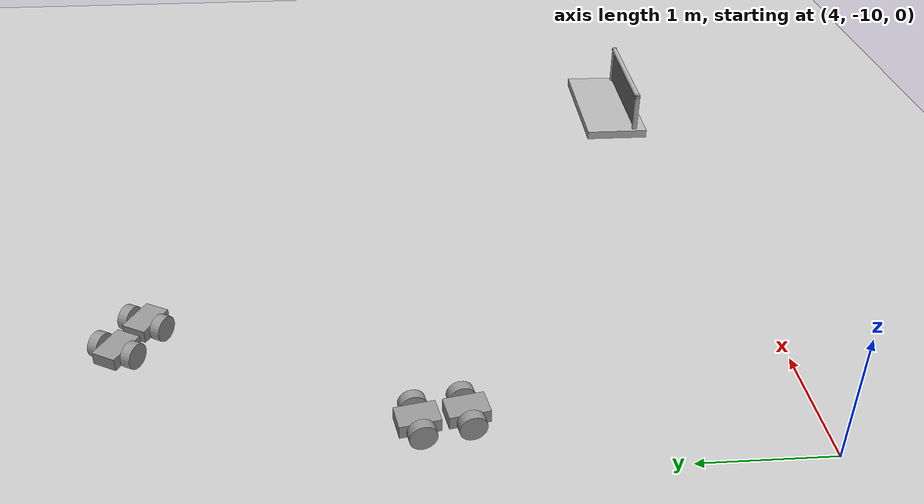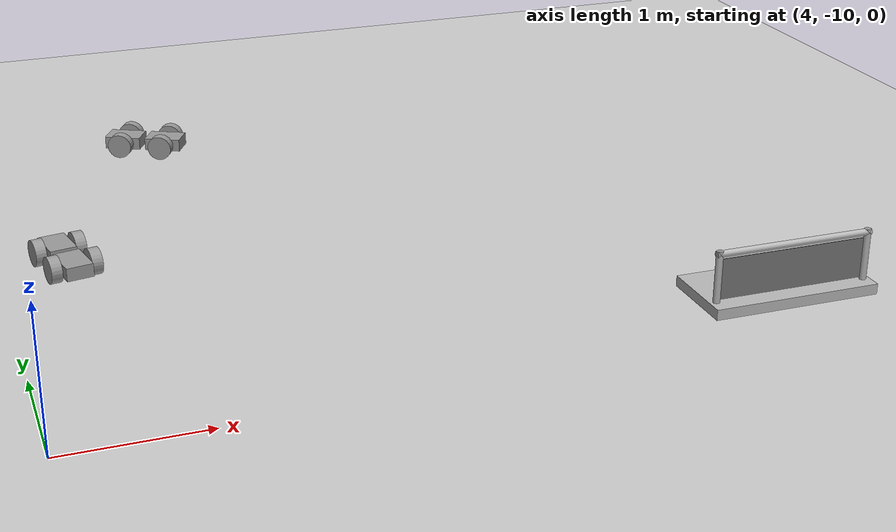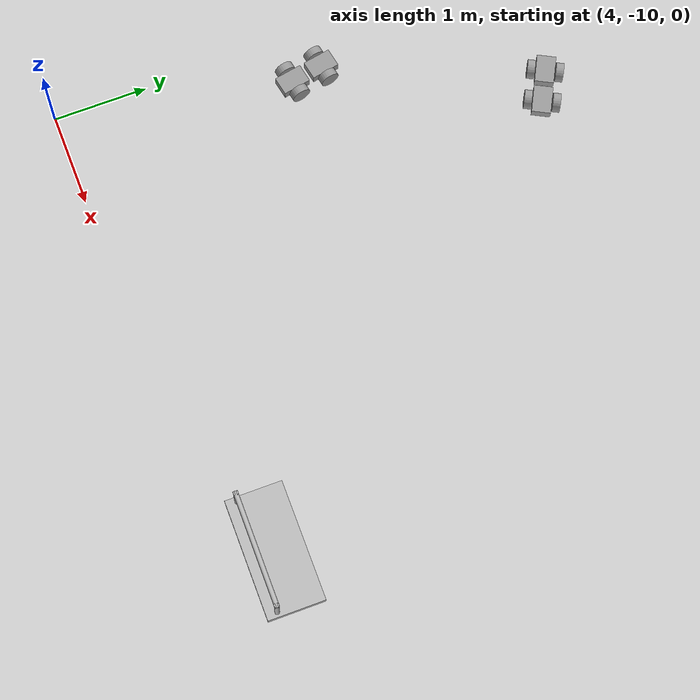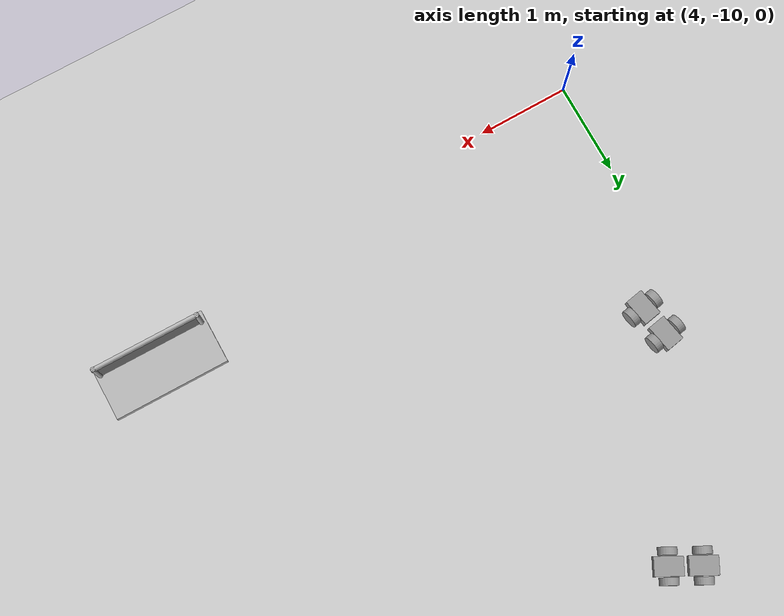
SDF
<sdf version="1.6">
 <world name="default">
  <model name="ground_plane">
   <static>1</static>
   <link name="link">
    <collision name="collision">
     <geometry><plane><normal>0 0 1</normal><size>100 100</size></plane></geometry>
     <surface><friction><ode><mu>100</mu><mu2>50</mu2></ode></friction></surface>
    </collision>
    <visual name="visual">
     <cast_shadows>0</cast_shadows>
     <geometry><plane><normal>0 0 1</normal><size>100 100</size></plane></geometry>
     <material>
      <script><uri>file://media/materials/scripts/gazebo.material</uri><name>Gazebo/Grey</name></script>
     </material>
    </visual>
   </link>
  </model>
  <model name="frc2016_lowbar">
   <link name="base">
    <inertial>
     <mass>50</mass>
     <inertia>
      <ixx>0.035543</ixx>
      <ixy>0</ixy>
      <ixz>0</ixz>
      <iyy>0.134412</iyy>
      <iyz>0</iyz>
      <izz>0.165376</izz>
     </inertia>
    </inertial>
    <visual name="platform">
     <pose>0 0 0.039065 0 -0 0</pose>
     <geometry><box><size>1.26 0.5996 0.07813</size></box></geometry>
    </visual>
    <collision name="platform">
     <pose>0 0 0.039065 0 -0 0</pose>
     <geometry><box><size>1.27 0.6096 0.07813</size></box></geometry>
    </collision>
    <visual name="right_column">
     <pose>-0.57845 -0.18464 0.26863 0 -0 0</pose>
     <geometry><cylinder><radius>0.0254</radius><length>0.381</length></cylinder></geometry>
    </visual>
    <collision name="right_column">
     <pose>-0.57845 -0.18464 0.26863 0 -0 0</pose>
     <geometry><cylinder><radius>0.0254</radius><length>0.381</length></cylinder></geometry>
    </collision>
    <visual name="left_column">
     <pose>0.57845 -0.18464 0.26863 0 -0 0</pose>
     <geometry><cylinder><radius>0.0254</radius><length>0.381</length></cylinder></geometry>
    </visual>
    <collision name="left_column">
     <pose>0.57845 -0.18464 0.26863 0 -0 0</pose>
     <geometry><cylinder><radius>0.0254</radius><length>0.381</length></cylinder></geometry>
    </collision>
    <visual name="horizontal">
     <pose>0 -0.18464 0.43556 0 1.5707 0</pose>
     <geometry><cylinder><radius>0.0254</radius><length>1.2018</length></cylinder></geometry>
    </visual>
    <collision name="horizontal">
     <pose>0 -0.18464 0.43556 0 1.5707 0</pose>
     <geometry><cylinder><radius>0.0254</radius><length>1.2018</length></cylinder></geometry>
    </collision>
   </link>
   <link name="wall">
    <pose>0 -0.1778 0.24323 0 -0 0</pose>
    <inertial>
     <mass>1</mass>
     <inertia>
      <ixx>0.00774528</ixx>
      <ixy>0</ixy>
      <ixz>0</ixz>
      <iyy>0.116613</iyy>
      <iyz>0</iyz>
      <izz>0.108874</izz>
     </inertia>
    </inertial>
    <visual name="visual">
     <geometry><box><size>1.1176 0.00635 0.3</size></box></geometry>
     <material><ambient>0.46 0.46 0.46 1</ambient><diffuse>0.46 0.46 0.46 1</diffuse></material>
    </visual>
    <collision name="collision"><geometry><box><size>1.143 0.00635 0.3</size></box></geometry></collision>
   </link>
   <joint name="bar_joint" type="revolute">
    <pose>0 0 0.36378 0 -0 0</pose>
    <parent>base</parent>
    <child>wall</child>
    <axis>
     <xyz>1 0 0</xyz>
     <limit><lower>-1.5707</lower><upper>1.5707</upper></limit>
     <use_parent_model_frame>0</use_parent_model_frame>
     <dynamics><spring_reference>0</spring_reference><spring_stiffness>0</spring_stiffness></dynamics>
    </axis>
   </joint>
   <pose>9.1262 -9.42422 -0.000101 0 -0.000159 -0.00457</pose>
  </model>
  <model name="ackerDrive">
   <link name="link_0">
    <inertial>
     <mass>1</mass>
     <inertia>
      <ixx>0.166667</ixx>
      <ixy>0</ixy>
      <ixz>0</ixz>
      <iyy>0.166667</iyy>
      <iyz>0</iyz>
      <izz>0.166667</izz>
     </inertia>
    </inertial>
    <self_collide>1</self_collide>
    <visual name="visual">
     <geometry><box><size>0.3 0.2 0.1</size></box></geometry>
     <material>
      <lighting>1</lighting>
      <script><uri>file://media/materials/scripts/gazebo.material</uri><name>Gazebo/Grey</name></script>
      <shader type="vertex"><normal_map>__default__</normal_map></shader>
      <ambient>0.3 0.3 0.3 1</ambient>
      <diffuse>0.7 0.7 0.7 1</diffuse>
      <specular>0.01 0.01 0.01 1</specular>
      <emissive>0 0 0 1</emissive>
     </material>
    </visual>
    <collision name="collision">
     <geometry><box><size>0.3 0.2 0.1</size></box></geometry>
     <surface>
      <friction>
       <ode><mu>1</mu><mu2>1</mu2><fdir1>0 0 0</fdir1><slip1>0</slip1><slip2>0</slip2></ode>
       <torsional>
        <coefficient>1</coefficient>
        <patch_radius>0</patch_radius>
        <surface_radius>0</surface_radius>
        <use_patch_radius>1</use_patch_radius>
        <ode><slip>0</slip></ode>
       </torsional>
      </friction>
      <bounce><restitution_coefficient>0</restitution_coefficient><threshold>1e+06</threshold></bounce>
      <contact>
       <collide_without_contact>0</collide_without_contact>
       <collide_without_contact_bitmask>1</collide_without_contact_bitmask>
       <collide_bitmask>1</collide_bitmask>
       <ode>
        <soft_cfm>0</soft_cfm>
        <soft_erp>0.2</soft_erp>
        <kp>1e+13</kp>
        <kd>1</kd>
        <max_vel>0.01</max_vel>
        <min_depth>0</min_depth>
       </ode>
       <bullet>
        <split_impulse>1</split_impulse>
        <split_impulse_penetration_threshold>-0.01</split_impulse_penetration_threshold>
        <soft_cfm>0</soft_cfm>
        <soft_erp>0.2</soft_erp>
        <kp>1e+13</kp>
        <kd>1</kd>
       </bullet>
      </contact>
     </surface>
    </collision>
   </link>
   <link name="link_0_clone">
    <inertial>
     <mass>1</mass>
     <inertia>
      <ixx>0.166667</ixx>
      <ixy>0</ixy>
      <ixz>0</ixz>
      <iyy>0.166667</iyy>
      <iyz>0</iyz>
      <izz>0.166667</izz>
     </inertia>
    </inertial>
    <pose>0.35 0 0 0 -0 0</pose>
    <self_collide>1</self_collide>
    <visual name="visual">
     <geometry><box><size>0.3 0.2 0.1</size></box></geometry>
     <material>
      <lighting>1</lighting>
      <script><uri>file://media/materials/scripts/gazebo.material</uri><name>Gazebo/Grey</name></script>
      <shader type="vertex"><normal_map>__default__</normal_map></shader>
      <ambient>0.3 0.3 0.3 1</ambient>
      <diffuse>0.7 0.7 0.7 1</diffuse>
      <specular>0.01 0.01 0.01 1</specular>
      <emissive>0 0 0 1</emissive>
     </material>
    </visual>
    <collision name="collision">
     <geometry><box><size>0.3 0.2 0.1</size></box></geometry>
     <surface>
      <friction>
       <ode><mu>1</mu><mu2>1</mu2><fdir1>0 0 0</fdir1><slip1>0</slip1><slip2>0</slip2></ode>
       <torsional>
        <coefficient>1</coefficient>
        <patch_radius>0</patch_radius>
        <surface_radius>0</surface_radius>
        <use_patch_radius>1</use_patch_radius>
        <ode><slip>0</slip></ode>
       </torsional>
      </friction>
      <bounce><restitution_coefficient>0</restitution_coefficient><threshold>1e+06</threshold></bounce>
      <contact>
       <collide_without_contact>0</collide_without_contact>
       <collide_without_contact_bitmask>1</collide_without_contact_bitmask>
       <collide_bitmask>1</collide_bitmask>
       <ode>
        <soft_cfm>0</soft_cfm>
        <soft_erp>0.2</soft_erp>
        <kp>1e+13</kp>
        <kd>1</kd>
        <max_vel>0.01</max_vel>
        <min_depth>0</min_depth>
       </ode>
       <bullet>
        <split_impulse>1</split_impulse>
        <split_impulse_penetration_threshold>-0.01</split_impulse_penetration_threshold>
        <soft_cfm>0</soft_cfm>
        <soft_erp>0.2</soft_erp>
        <kp>1e+13</kp>
        <kd>1</kd>
       </bullet>
      </contact>
     </surface>
    </collision>
   </link>
   <link name="link_1">
    <inertial>
     <mass>1</mass>
     <inertia><ixx>0.145833</ixx><ixy>0</ixy><ixz>0</ixz><iyy>0.145833</iyy><iyz>0</iyz><izz>0.125</izz></inertia>
    </inertial>
    <pose>-0 -0.15 -0 1.57 -0 0</pose>
    <self_collide>1</self_collide>
    <visual name="visual">
     <geometry><cylinder><radius>0.1</radius><length>0.08</length></cylinder></geometry>
     <material>
      <lighting>1</lighting>
      <script><uri>file://media/materials/scripts/gazebo.material</uri><name>Gazebo/Grey</name></script>
      <shader type="vertex"><normal_map>__default__</normal_map></shader>
      <ambient>0.3 0.3 0.3 1</ambient>
      <diffuse>0.7 0.7 0.7 1</diffuse>
      <specular>0.01 0.01 0.01 1</specular>
      <emissive>0 0 0 1</emissive>
     </material>
    </visual>
    <collision name="collision">
     <geometry><cylinder><radius>0.1</radius><length>0.08</length></cylinder></geometry>
     <surface>
      <friction>
       <ode><mu>1</mu><mu2>1</mu2><fdir1>0 0 0</fdir1><slip1>0</slip1><slip2>0</slip2></ode>
       <torsional>
        <coefficient>1</coefficient>
        <patch_radius>0</patch_radius>
        <surface_radius>0</surface_radius>
        <use_patch_radius>1</use_patch_radius>
        <ode><slip>0</slip></ode>
       </torsional>
      </friction>
      <bounce><restitution_coefficient>0</restitution_coefficient><threshold>1e+06</threshold></bounce>
      <contact>
       <collide_without_contact>0</collide_without_contact>
       <collide_without_contact_bitmask>1</collide_without_contact_bitmask>
       <collide_bitmask>1</collide_bitmask>
       <ode>
        <soft_cfm>0</soft_cfm>
        <soft_erp>0.2</soft_erp>
        <kp>1e+13</kp>
        <kd>1</kd>
        <max_vel>0.01</max_vel>
        <min_depth>0</min_depth>
       </ode>
       <bullet>
        <split_impulse>1</split_impulse>
        <split_impulse_penetration_threshold>-0.01</split_impulse_penetration_threshold>
        <soft_cfm>0</soft_cfm>
        <soft_erp>0.2</soft_erp>
        <kp>1e+13</kp>
        <kd>1</kd>
       </bullet>
      </contact>
     </surface>
    </collision>
   </link>
   <link name="link_1_clone">
    <inertial>
     <mass>1</mass>
     <inertia><ixx>0.145833</ixx><ixy>0</ixy><ixz>0</ixz><iyy>0.145833</iyy><iyz>0</iyz><izz>0.125</izz></inertia>
    </inertial>
    <pose>0 0.15 0 1.57 -0 0</pose>
    <self_collide>1</self_collide>
    <visual name="visual">
     <geometry><cylinder><radius>0.1</radius><length>0.08</length></cylinder></geometry>
     <material>
      <lighting>1</lighting>
      <script><uri>file://media/materials/scripts/gazebo.material</uri><name>Gazebo/Grey</name></script>
      <shader type="vertex"><normal_map>__default__</normal_map></shader>
      <ambient>0.3 0.3 0.3 1</ambient>
      <diffuse>0.7 0.7 0.7 1</diffuse>
      <specular>0.01 0.01 0.01 1</specular>
      <emissive>0 0 0 1</emissive>
     </material>
    </visual>
    <collision name="collision">
     <geometry><cylinder><radius>0.1</radius><length>0.08</length></cylinder></geometry>
     <surface>
      <friction>
       <ode><mu>0.98</mu><mu2>1</mu2><fdir1>0 0 0</fdir1><slip1>0</slip1><slip2>0</slip2></ode>
       <torsional>
        <coefficient>1</coefficient>
        <patch_radius>0</patch_radius>
        <surface_radius>0</surface_radius>
        <use_patch_radius>1</use_patch_radius>
        <ode><slip>0</slip></ode>
       </torsional>
      </friction>
      <bounce><restitution_coefficient>0</restitution_coefficient><threshold>1e+06</threshold></bounce>
      <contact>
       <collide_without_contact>0</collide_without_contact>
       <collide_without_contact_bitmask>1</collide_without_contact_bitmask>
       <collide_bitmask>1</collide_bitmask>
       <ode>
        <soft_cfm>0</soft_cfm>
        <soft_erp>0.2</soft_erp>
        <kp>1e+13</kp>
        <kd>1</kd>
        <max_vel>0.01</max_vel>
        <min_depth>0</min_depth>
       </ode>
       <bullet>
        <split_impulse>1</split_impulse>
        <split_impulse_penetration_threshold>-0.01</split_impulse_penetration_threshold>
        <soft_cfm>0</soft_cfm>
        <soft_erp>0.2</soft_erp>
        <kp>1e+13</kp>
        <kd>1</kd>
       </bullet>
      </contact>
     </surface>
    </collision>
   </link>
   <link name="link_1_clone_0">
    <inertial>
     <mass>1</mass>
     <inertia><ixx>0.145833</ixx><ixy>0</ixy><ixz>0</ixz><iyy>0.145833</iyy><iyz>0</iyz><izz>0.125</izz></inertia>
    </inertial>
    <pose>0.35 -0.15 -0 1.57 -0 0</pose>
    <self_collide>1</self_collide>
    <visual name="visual">
     <geometry><cylinder><radius>0.1</radius><length>0.08</length></cylinder></geometry>
     <material>
      <lighting>1</lighting>
      <script><uri>file://media/materials/scripts/gazebo.material</uri><name>Gazebo/Grey</name></script>
      <shader type="vertex"><normal_map>__default__</normal_map></shader>
      <ambient>0.3 0.3 0.3 1</ambient>
      <diffuse>0.7 0.7 0.7 1</diffuse>
      <specular>0.01 0.01 0.01 1</specular>
      <emissive>0 0 0 1</emissive>
     </material>
    </visual>
    <collision name="collision">
     <geometry><cylinder><radius>0.1</radius><length>0.08</length></cylinder></geometry>
     <surface>
      <friction>
       <ode><mu>1</mu><mu2>1</mu2><fdir1>0 0 0</fdir1><slip1>0</slip1><slip2>0</slip2></ode>
       <torsional>
        <coefficient>1</coefficient>
        <patch_radius>0</patch_radius>
        <surface_radius>0</surface_radius>
        <use_patch_radius>1</use_patch_radius>
        <ode><slip>0</slip></ode>
       </torsional>
      </friction>
      <bounce><restitution_coefficient>0</restitution_coefficient><threshold>1e+06</threshold></bounce>
      <contact>
       <collide_without_contact>0</collide_without_contact>
       <collide_without_contact_bitmask>1</collide_without_contact_bitmask>
       <collide_bitmask>1</collide_bitmask>
       <ode>
        <soft_cfm>0</soft_cfm>
        <soft_erp>0.2</soft_erp>
        <kp>1e+13</kp>
        <kd>1</kd>
        <max_vel>0.01</max_vel>
        <min_depth>0</min_depth>
       </ode>
       <bullet>
        <split_impulse>1</split_impulse>
        <split_impulse_penetration_threshold>-0.01</split_impulse_penetration_threshold>
        <soft_cfm>0</soft_cfm>
        <soft_erp>0.2</soft_erp>
        <kp>1e+13</kp>
        <kd>1</kd>
       </bullet>
      </contact>
     </surface>
    </collision>
   </link>
   <link name="link_1_clone_clone">
    <inertial>
     <mass>1</mass>
     <inertia><ixx>0.145833</ixx><ixy>0</ixy><ixz>0</ixz><iyy>0.145833</iyy><iyz>0</iyz><izz>0.125</izz></inertia>
    </inertial>
    <pose>0.35 0.15 -0 1.57 -0 0</pose>
    <self_collide>1</self_collide>
    <visual name="visual">
     <geometry><cylinder><radius>0.1</radius><length>0.08</length></cylinder></geometry>
     <material>
      <lighting>1</lighting>
      <script><uri>file://media/materials/scripts/gazebo.material</uri><name>Gazebo/Grey</name></script>
      <shader type="vertex"><normal_map>__default__</normal_map></shader>
      <ambient>0.3 0.3 0.3 1</ambient>
      <diffuse>0.7 0.7 0.7 1</diffuse>
      <specular>0.01 0.01 0.01 1</specular>
      <emissive>0 0 0 1</emissive>
     </material>
    </visual>
    <collision name="collision">
     <geometry><cylinder><radius>0.1</radius><length>0.08</length></cylinder></geometry>
     <surface>
      <friction>
       <ode><mu>1</mu><mu2>1</mu2><fdir1>0 0 0</fdir1><slip1>0</slip1><slip2>0</slip2></ode>
       <torsional>
        <coefficient>1</coefficient>
        <patch_radius>0</patch_radius>
        <surface_radius>0</surface_radius>
        <use_patch_radius>1</use_patch_radius>
        <ode><slip>0</slip></ode>
       </torsional>
      </friction>
      <bounce><restitution_coefficient>0</restitution_coefficient><threshold>1e+06</threshold></bounce>
      <contact>
       <collide_without_contact>0</collide_without_contact>
       <collide_without_contact_bitmask>1</collide_without_contact_bitmask>
       <collide_bitmask>1</collide_bitmask>
       <ode>
        <soft_cfm>0</soft_cfm>
        <soft_erp>0.2</soft_erp>
        <kp>1e+13</kp>
        <kd>1</kd>
        <max_vel>0.01</max_vel>
        <min_depth>0</min_depth>
       </ode>
       <bullet>
        <split_impulse>1</split_impulse>
        <split_impulse_penetration_threshold>-0.01</split_impulse_penetration_threshold>
        <soft_cfm>0</soft_cfm>
        <soft_erp>0.2</soft_erp>
        <kp>1e+13</kp>
        <kd>1</kd>
       </bullet>
      </contact>
     </surface>
    </collision>
   </link>
   <joint name="link_0_JOINT_2" type="revolute">
    <parent>link_0</parent>
    <child>link_1_clone</child>
    <axis>
     <xyz>0 0 1</xyz>
     <use_parent_model_frame>0</use_parent_model_frame>
     <limit>
      <lower>-1.79769e+308</lower>
      <upper>1.79769e+308</upper>
      <effort>-1</effort>
      <velocity>-1</velocity>
     </limit>
     <dynamics>
      <spring_reference>0</spring_reference>
      <spring_stiffness>0</spring_stiffness>
      <damping>0</damping>
      <friction>0</friction>
     </dynamics>
    </axis>
    <physics>
     <ode><limit><cfm>0</cfm><erp>0.2</erp></limit><suspension><cfm>0</cfm><erp>0.2</erp></suspension></ode>
    </physics>
   </joint>
   <joint name="link_0_JOINT_3" type="revolute">
    <parent>link_0</parent>
    <child>link_1</child>
    <axis>
     <xyz>0 0 1</xyz>
     <use_parent_model_frame>0</use_parent_model_frame>
     <limit>
      <lower>-1.79769e+308</lower>
      <upper>1.79769e+308</upper>
      <effort>-1</effort>
      <velocity>-1</velocity>
     </limit>
     <dynamics>
      <spring_reference>0</spring_reference>
      <spring_stiffness>0</spring_stiffness>
      <damping>0</damping>
      <friction>0</friction>
     </dynamics>
    </axis>
    <physics>
     <ode><limit><cfm>0</cfm><erp>0.2</erp></limit><suspension><cfm>0</cfm><erp>0.2</erp></suspension></ode>
    </physics>
   </joint>
   <joint name="link_0_clone_JOINT_4" type="revolute">
    <parent>link_0_clone</parent>
    <child>link_1_clone_0</child>
    <axis>
     <xyz>0 0 1</xyz>
     <use_parent_model_frame>0</use_parent_model_frame>
     <limit>
      <lower>-1.79769e+308</lower>
      <upper>1.79769e+308</upper>
      <effort>-1</effort>
      <velocity>-1</velocity>
     </limit>
     <dynamics>
      <spring_reference>0</spring_reference>
      <spring_stiffness>0</spring_stiffness>
      <damping>0</damping>
      <friction>0</friction>
     </dynamics>
    </axis>
    <physics>
     <ode><limit><cfm>0</cfm><erp>0.2</erp></limit><suspension><cfm>0</cfm><erp>0.2</erp></suspension></ode>
    </physics>
   </joint>
   <joint name="link_0_clone_JOINT_5" type="revolute">
    <parent>link_0_clone</parent>
    <child>link_1_clone_clone</child>
    <axis>
     <xyz>0 0 1</xyz>
     <use_parent_model_frame>0</use_parent_model_frame>
     <limit>
      <lower>-1.79769e+308</lower>
      <upper>1.79769e+308</upper>
      <effort>-1</effort>
      <velocity>-1</velocity>
     </limit>
     <dynamics>
      <spring_reference>0</spring_reference>
      <spring_stiffness>0</spring_stiffness>
      <damping>0</damping>
      <friction>0</friction>
     </dynamics>
    </axis>
    <physics>
     <ode><limit><cfm>0</cfm><erp>0.2</erp></limit><suspension><cfm>0</cfm><erp>0.2</erp></suspension></ode>
    </physics>
   </joint>
   <joint name="link_0_clone_JOINT_6" type="revolute">
    <parent>link_0_clone</parent>
    <child>link_0</child>
    <pose>0.18 0 0 0 -0 0</pose>
    <axis>
     <xyz>0 0 1</xyz>
     <use_parent_model_frame>0</use_parent_model_frame>
     <limit><lower>-1e+16</lower><upper>1e+16</upper><effort>-1</effort><velocity>-1</velocity></limit>
     <dynamics>
      <spring_reference>0</spring_reference>
      <spring_stiffness>0</spring_stiffness>
      <damping>0</damping>
      <friction>0</friction>
     </dynamics>
    </axis>
    <physics>
     <ode><limit><cfm>0</cfm><erp>0.2</erp></limit><suspension><cfm>0</cfm><erp>0.2</erp></suspension></ode>
    </physics>
   </joint>
   <static>0</static>
   <allow_auto_disable>0</allow_auto_disable>
   <pose>5.32291 -4.99717 0.100031 7e-06 -6e-06 -0.482101</pose>
  </model>
  <model name="ackerDrive_0">
   <link name="link_0">
    <inertial>
     <mass>1</mass>
     <inertia>
      <ixx>0.166667</ixx>
      <ixy>0</ixy>
      <ixz>0</ixz>
      <iyy>0.166667</iyy>
      <iyz>0</iyz>
      <izz>0.166667</izz>
     </inertia>
    </inertial>
    <self_collide>1</self_collide>
    <visual name="visual">
     <geometry><box><size>0.3 0.2 0.1</size></box></geometry>
     <material>
      <lighting>1</lighting>
      <script><uri>file://media/materials/scripts/gazebo.material</uri><name>Gazebo/Grey</name></script>
      <shader type="vertex"><normal_map>__default__</normal_map></shader>
      <ambient>0.3 0.3 0.3 1</ambient>
      <diffuse>0.7 0.7 0.7 1</diffuse>
      <specular>0.01 0.01 0.01 1</specular>
      <emissive>0 0 0 1</emissive>
     </material>
    </visual>
    <collision name="collision">
     <geometry><box><size>0.3 0.2 0.1</size></box></geometry>
     <surface>
      <friction>
       <ode><mu>1</mu><mu2>1</mu2><fdir1>0 0 0</fdir1><slip1>0</slip1><slip2>0</slip2></ode>
       <torsional>
        <coefficient>1</coefficient>
        <patch_radius>0</patch_radius>
        <surface_radius>0</surface_radius>
        <use_patch_radius>1</use_patch_radius>
        <ode><slip>0</slip></ode>
       </torsional>
      </friction>
      <bounce><restitution_coefficient>0</restitution_coefficient><threshold>1e+06</threshold></bounce>
      <contact>
       <collide_without_contact>0</collide_without_contact>
       <collide_without_contact_bitmask>1</collide_without_contact_bitmask>
       <collide_bitmask>1</collide_bitmask>
       <ode>
        <soft_cfm>0</soft_cfm>
        <soft_erp>0.2</soft_erp>
        <kp>1e+13</kp>
        <kd>1</kd>
        <max_vel>0.01</max_vel>
        <min_depth>0</min_depth>
       </ode>
       <bullet>
        <split_impulse>1</split_impulse>
        <split_impulse_penetration_threshold>-0.01</split_impulse_penetration_threshold>
        <soft_cfm>0</soft_cfm>
        <soft_erp>0.2</soft_erp>
        <kp>1e+13</kp>
        <kd>1</kd>
       </bullet>
      </contact>
     </surface>
    </collision>
   </link>
   <link name="link_0_clone">
    <inertial>
     <mass>1</mass>
     <inertia>
      <ixx>0.166667</ixx>
      <ixy>0</ixy>
      <ixz>0</ixz>
      <iyy>0.166667</iyy>
      <iyz>0</iyz>
      <izz>0.166667</izz>
     </inertia>
    </inertial>
    <pose>0.35 0 0 0 -0 0</pose>
    <self_collide>1</self_collide>
    <visual name="visual">
     <geometry><box><size>0.3 0.2 0.1</size></box></geometry>
     <material>
      <lighting>1</lighting>
      <script><uri>file://media/materials/scripts/gazebo.material</uri><name>Gazebo/Grey</name></script>
      <shader type="vertex"><normal_map>__default__</normal_map></shader>
      <ambient>0.3 0.3 0.3 1</ambient>
      <diffuse>0.7 0.7 0.7 1</diffuse>
      <specular>0.01 0.01 0.01 1</specular>
      <emissive>0 0 0 1</emissive>
     </material>
    </visual>
    <collision name="collision">
     <geometry><box><size>0.3 0.2 0.1</size></box></geometry>
     <surface>
      <friction>
       <ode><mu>1</mu><mu2>1</mu2><fdir1>0 0 0</fdir1><slip1>0</slip1><slip2>0</slip2></ode>
       <torsional>
        <coefficient>1</coefficient>
        <patch_radius>0</patch_radius>
        <surface_radius>0</surface_radius>
        <use_patch_radius>1</use_patch_radius>
        <ode><slip>0</slip></ode>
       </torsional>
      </friction>
      <bounce><restitution_coefficient>0</restitution_coefficient><threshold>1e+06</threshold></bounce>
      <contact>
       <collide_without_contact>0</collide_without_contact>
       <collide_without_contact_bitmask>1</collide_without_contact_bitmask>
       <collide_bitmask>1</collide_bitmask>
       <ode>
        <soft_cfm>0</soft_cfm>
        <soft_erp>0.2</soft_erp>
        <kp>1e+13</kp>
        <kd>1</kd>
        <max_vel>0.01</max_vel>
        <min_depth>0</min_depth>
       </ode>
       <bullet>
        <split_impulse>1</split_impulse>
        <split_impulse_penetration_threshold>-0.01</split_impulse_penetration_threshold>
        <soft_cfm>0</soft_cfm>
        <soft_erp>0.2</soft_erp>
        <kp>1e+13</kp>
        <kd>1</kd>
       </bullet>
      </contact>
     </surface>
    </collision>
   </link>
   <link name="link_1">
    <inertial>
     <mass>1</mass>
     <inertia><ixx>0.145833</ixx><ixy>0</ixy><ixz>0</ixz><iyy>0.145833</iyy><iyz>0</iyz><izz>0.125</izz></inertia>
    </inertial>
    <pose>-0 -0.15 -0 1.57 -0 0</pose>
    <self_collide>1</self_collide>
    <visual name="visual">
     <geometry><cylinder><radius>0.1</radius><length>0.08</length></cylinder></geometry>
     <material>
      <lighting>1</lighting>
      <script><uri>file://media/materials/scripts/gazebo.material</uri><name>Gazebo/Grey</name></script>
      <shader type="vertex"><normal_map>__default__</normal_map></shader>
      <ambient>0.3 0.3 0.3 1</ambient>
      <diffuse>0.7 0.7 0.7 1</diffuse>
      <specular>0.01 0.01 0.01 1</specular>
      <emissive>0 0 0 1</emissive>
     </material>
    </visual>
    <collision name="collision">
     <geometry><cylinder><radius>0.1</radius><length>0.08</length></cylinder></geometry>
     <surface>
      <friction>
       <ode><mu>1</mu><mu2>1</mu2><fdir1>0 0 0</fdir1><slip1>0</slip1><slip2>0</slip2></ode>
       <torsional>
        <coefficient>1</coefficient>
        <patch_radius>0</patch_radius>
        <surface_radius>0</surface_radius>
        <use_patch_radius>1</use_patch_radius>
        <ode><slip>0</slip></ode>
       </torsional>
      </friction>
      <bounce><restitution_coefficient>0</restitution_coefficient><threshold>1e+06</threshold></bounce>
      <contact>
       <collide_without_contact>0</collide_without_contact>
       <collide_without_contact_bitmask>1</collide_without_contact_bitmask>
       <collide_bitmask>1</collide_bitmask>
       <ode>
        <soft_cfm>0</soft_cfm>
        <soft_erp>0.2</soft_erp>
        <kp>1e+13</kp>
        <kd>1</kd>
        <max_vel>0.01</max_vel>
        <min_depth>0</min_depth>
       </ode>
       <bullet>
        <split_impulse>1</split_impulse>
        <split_impulse_penetration_threshold>-0.01</split_impulse_penetration_threshold>
        <soft_cfm>0</soft_cfm>
        <soft_erp>0.2</soft_erp>
        <kp>1e+13</kp>
        <kd>1</kd>
       </bullet>
      </contact>
     </surface>
    </collision>
   </link>
   <link name="link_1_clone">
    <inertial>
     <mass>1</mass>
     <inertia><ixx>0.145833</ixx><ixy>0</ixy><ixz>0</ixz><iyy>0.145833</iyy><iyz>0</iyz><izz>0.125</izz></inertia>
    </inertial>
    <pose>0 0.15 0 1.57 -0 0</pose>
    <self_collide>1</self_collide>
    <visual name="visual">
     <geometry><cylinder><radius>0.1</radius><length>0.08</length></cylinder></geometry>
     <material>
      <lighting>1</lighting>
      <script><uri>file://media/materials/scripts/gazebo.material</uri><name>Gazebo/Grey</name></script>
      <shader type="vertex"><normal_map>__default__</normal_map></shader>
      <ambient>0.3 0.3 0.3 1</ambient>
      <diffuse>0.7 0.7 0.7 1</diffuse>
      <specular>0.01 0.01 0.01 1</specular>
      <emissive>0 0 0 1</emissive>
     </material>
    </visual>
    <collision name="collision">
     <geometry><cylinder><radius>0.1</radius><length>0.08</length></cylinder></geometry>
     <surface>
      <friction>
       <ode><mu>0.98</mu><mu2>1</mu2><fdir1>0 0 0</fdir1><slip1>0</slip1><slip2>0</slip2></ode>
       <torsional>
        <coefficient>1</coefficient>
        <patch_radius>0</patch_radius>
        <surface_radius>0</surface_radius>
        <use_patch_radius>1</use_patch_radius>
        <ode><slip>0</slip></ode>
       </torsional>
      </friction>
      <bounce><restitution_coefficient>0</restitution_coefficient><threshold>1e+06</threshold></bounce>
      <contact>
       <collide_without_contact>0</collide_without_contact>
       <collide_without_contact_bitmask>1</collide_without_contact_bitmask>
       <collide_bitmask>1</collide_bitmask>
       <ode>
        <soft_cfm>0</soft_cfm>
        <soft_erp>0.2</soft_erp>
        <kp>1e+13</kp>
        <kd>1</kd>
        <max_vel>0.01</max_vel>
        <min_depth>0</min_depth>
       </ode>
       <bullet>
        <split_impulse>1</split_impulse>
        <split_impulse_penetration_threshold>-0.01</split_impulse_penetration_threshold>
        <soft_cfm>0</soft_cfm>
        <soft_erp>0.2</soft_erp>
        <kp>1e+13</kp>
        <kd>1</kd>
       </bullet>
      </contact>
     </surface>
    </collision>
   </link>
   <link name="link_1_clone_0">
    <inertial>
     <mass>1</mass>
     <inertia><ixx>0.145833</ixx><ixy>0</ixy><ixz>0</ixz><iyy>0.145833</iyy><iyz>0</iyz><izz>0.125</izz></inertia>
    </inertial>
    <pose>0.35 -0.15 -0 1.57 -0 0</pose>
    <self_collide>1</self_collide>
    <visual name="visual">
     <geometry><cylinder><radius>0.1</radius><length>0.08</length></cylinder></geometry>
     <material>
      <lighting>1</lighting>
      <script><uri>file://media/materials/scripts/gazebo.material</uri><name>Gazebo/Grey</name></script>
      <shader type="vertex"><normal_map>__default__</normal_map></shader>
      <ambient>0.3 0.3 0.3 1</ambient>
      <diffuse>0.7 0.7 0.7 1</diffuse>
      <specular>0.01 0.01 0.01 1</specular>
      <emissive>0 0 0 1</emissive>
     </material>
    </visual>
    <collision name="collision">
     <geometry><cylinder><radius>0.1</radius><length>0.08</length></cylinder></geometry>
     <surface>
      <friction>
       <ode><mu>1</mu><mu2>1</mu2><fdir1>0 0 0</fdir1><slip1>0</slip1><slip2>0</slip2></ode>
       <torsional>
        <coefficient>1</coefficient>
        <patch_radius>0</patch_radius>
        <surface_radius>0</surface_radius>
        <use_patch_radius>1</use_patch_radius>
        <ode><slip>0</slip></ode>
       </torsional>
      </friction>
      <bounce><restitution_coefficient>0</restitution_coefficient><threshold>1e+06</threshold></bounce>
      <contact>
       <collide_without_contact>0</collide_without_contact>
       <collide_without_contact_bitmask>1</collide_without_contact_bitmask>
       <collide_bitmask>1</collide_bitmask>
       <ode>
        <soft_cfm>0</soft_cfm>
        <soft_erp>0.2</soft_erp>
        <kp>1e+13</kp>
        <kd>1</kd>
        <max_vel>0.01</max_vel>
        <min_depth>0</min_depth>
       </ode>
       <bullet>
        <split_impulse>1</split_impulse>
        <split_impulse_penetration_threshold>-0.01</split_impulse_penetration_threshold>
        <soft_cfm>0</soft_cfm>
        <soft_erp>0.2</soft_erp>
        <kp>1e+13</kp>
        <kd>1</kd>
       </bullet>
      </contact>
     </surface>
    </collision>
   </link>
   <link name="link_1_clone_clone">
    <inertial>
     <mass>1</mass>
     <inertia><ixx>0.145833</ixx><ixy>0</ixy><ixz>0</ixz><iyy>0.145833</iyy><iyz>0</iyz><izz>0.125</izz></inertia>
    </inertial>
    <pose>0.35 0.15 -0 1.57 -0 0</pose>
    <self_collide>1</self_collide>
    <visual name="visual">
     <geometry><cylinder><radius>0.1</radius><length>0.08</length></cylinder></geometry>
     <material>
      <lighting>1</lighting>
      <script><uri>file://media/materials/scripts/gazebo.material</uri><name>Gazebo/Grey</name></script>
      <shader type="vertex"><normal_map>__default__</normal_map></shader>
      <ambient>0.3 0.3 0.3 1</ambient>
      <diffuse>0.7 0.7 0.7 1</diffuse>
      <specular>0.01 0.01 0.01 1</specular>
      <emissive>0 0 0 1</emissive>
     </material>
    </visual>
    <collision name="collision">
     <geometry><cylinder><radius>0.1</radius><length>0.08</length></cylinder></geometry>
     <surface>
      <friction>
       <ode><mu>1</mu><mu2>1</mu2><fdir1>0 0 0</fdir1><slip1>0</slip1><slip2>0</slip2></ode>
       <torsional>
        <coefficient>1</coefficient>
        <patch_radius>0</patch_radius>
        <surface_radius>0</surface_radius>
        <use_patch_radius>1</use_patch_radius>
        <ode><slip>0</slip></ode>
       </torsional>
      </friction>
      <bounce><restitution_coefficient>0</restitution_coefficient><threshold>1e+06</threshold></bounce>
      <contact>
       <collide_without_contact>0</collide_without_contact>
       <collide_without_contact_bitmask>1</collide_without_contact_bitmask>
       <collide_bitmask>1</collide_bitmask>
       <ode>
        <soft_cfm>0</soft_cfm>
        <soft_erp>0.2</soft_erp>
        <kp>1e+13</kp>
        <kd>1</kd>
        <max_vel>0.01</max_vel>
        <min_depth>0</min_depth>
       </ode>
       <bullet>
        <split_impulse>1</split_impulse>
        <split_impulse_penetration_threshold>-0.01</split_impulse_penetration_threshold>
        <soft_cfm>0</soft_cfm>
        <soft_erp>0.2</soft_erp>
        <kp>1e+13</kp>
        <kd>1</kd>
       </bullet>
      </contact>
     </surface>
    </collision>
   </link>
   <joint name="link_0_JOINT_2" type="revolute">
    <parent>link_0</parent>
    <child>link_1_clone</child>
    <axis>
     <xyz>0 0 1</xyz>
     <use_parent_model_frame>0</use_parent_model_frame>
     <limit>
      <lower>-1.79769e+308</lower>
      <upper>1.79769e+308</upper>
      <effort>-1</effort>
      <velocity>-1</velocity>
     </limit>
     <dynamics>
      <spring_reference>0</spring_reference>
      <spring_stiffness>0</spring_stiffness>
      <damping>0</damping>
      <friction>0</friction>
     </dynamics>
    </axis>
    <physics>
     <ode><limit><cfm>0</cfm><erp>0.2</erp></limit><suspension><cfm>0</cfm><erp>0.2</erp></suspension></ode>
    </physics>
   </joint>
   <joint name="link_0_JOINT_3" type="revolute">
    <parent>link_0</parent>
    <child>link_1</child>
    <axis>
     <xyz>0 0 1</xyz>
     <use_parent_model_frame>0</use_parent_model_frame>
     <limit>
      <lower>-1.79769e+308</lower>
      <upper>1.79769e+308</upper>
      <effort>-1</effort>
      <velocity>-1</velocity>
     </limit>
     <dynamics>
      <spring_reference>0</spring_reference>
      <spring_stiffness>0</spring_stiffness>
      <damping>0</damping>
      <friction>0</friction>
     </dynamics>
    </axis>
    <physics>
     <ode><limit><cfm>0</cfm><erp>0.2</erp></limit><suspension><cfm>0</cfm><erp>0.2</erp></suspension></ode>
    </physics>
   </joint>
   <joint name="link_0_clone_JOINT_4" type="revolute">
    <parent>link_0_clone</parent>
    <child>link_1_clone_0</child>
    <axis>
     <xyz>0 0 1</xyz>
     <use_parent_model_frame>0</use_parent_model_frame>
     <limit>
      <lower>-1.79769e+308</lower>
      <upper>1.79769e+308</upper>
      <effort>-1</effort>
      <velocity>-1</velocity>
     </limit>
     <dynamics>
      <spring_reference>0</spring_reference>
      <spring_stiffness>0</spring_stiffness>
      <damping>0</damping>
      <friction>0</friction>
     </dynamics>
    </axis>
    <physics>
     <ode><limit><cfm>0</cfm><erp>0.2</erp></limit><suspension><cfm>0</cfm><erp>0.2</erp></suspension></ode>
    </physics>
   </joint>
   <joint name="link_0_clone_JOINT_5" type="revolute">
    <parent>link_0_clone</parent>
    <child>link_1_clone_clone</child>
    <axis>
     <xyz>0 0 1</xyz>
     <use_parent_model_frame>0</use_parent_model_frame>
     <limit>
      <lower>-1.79769e+308</lower>
      <upper>1.79769e+308</upper>
      <effort>-1</effort>
      <velocity>-1</velocity>
     </limit>
     <dynamics>
      <spring_reference>0</spring_reference>
      <spring_stiffness>0</spring_stiffness>
      <damping>0</damping>
      <friction>0</friction>
     </dynamics>
    </axis>
    <physics>
     <ode><limit><cfm>0</cfm><erp>0.2</erp></limit><suspension><cfm>0</cfm><erp>0.2</erp></suspension></ode>
    </physics>
   </joint>
   <joint name="link_0_clone_JOINT_6" type="revolute">
    <parent>link_0_clone</parent>
    <child>link_0</child>
    <pose>0.18 0 0 0 -0 0</pose>
    <axis>
     <xyz>0 0 1</xyz>
     <use_parent_model_frame>0</use_parent_model_frame>
     <limit><lower>-1e+16</lower><upper>1e+16</upper><effort>-1</effort><velocity>-1</velocity></limit>
     <dynamics>
      <spring_reference>0</spring_reference>
      <spring_stiffness>0</spring_stiffness>
      <damping>0</damping>
      <friction>0</friction>
     </dynamics>
    </axis>
    <physics>
     <ode><limit><cfm>0</cfm><erp>0.2</erp></limit><suspension><cfm>0</cfm><erp>0.2</erp></suspension></ode>
    </physics>
   </joint>
   <static>0</static>
   <allow_auto_disable>0</allow_auto_disable>
   <pose>4.44251 -7.18798 0.100032 3e-06 3e-06 -1.38543</pose>
  </model>
 </world>
</sdf>
